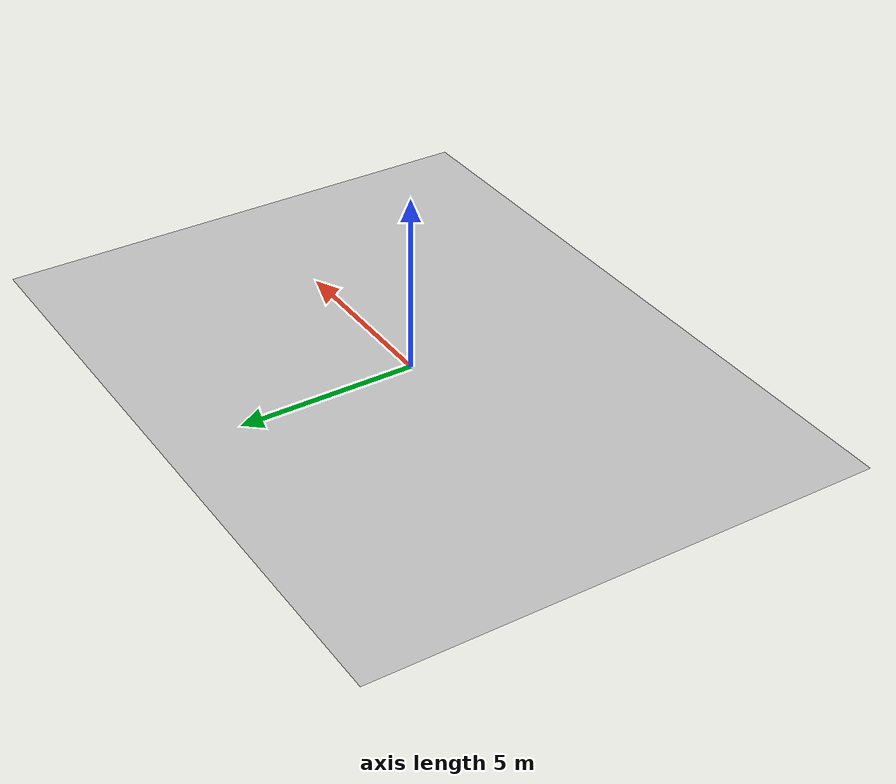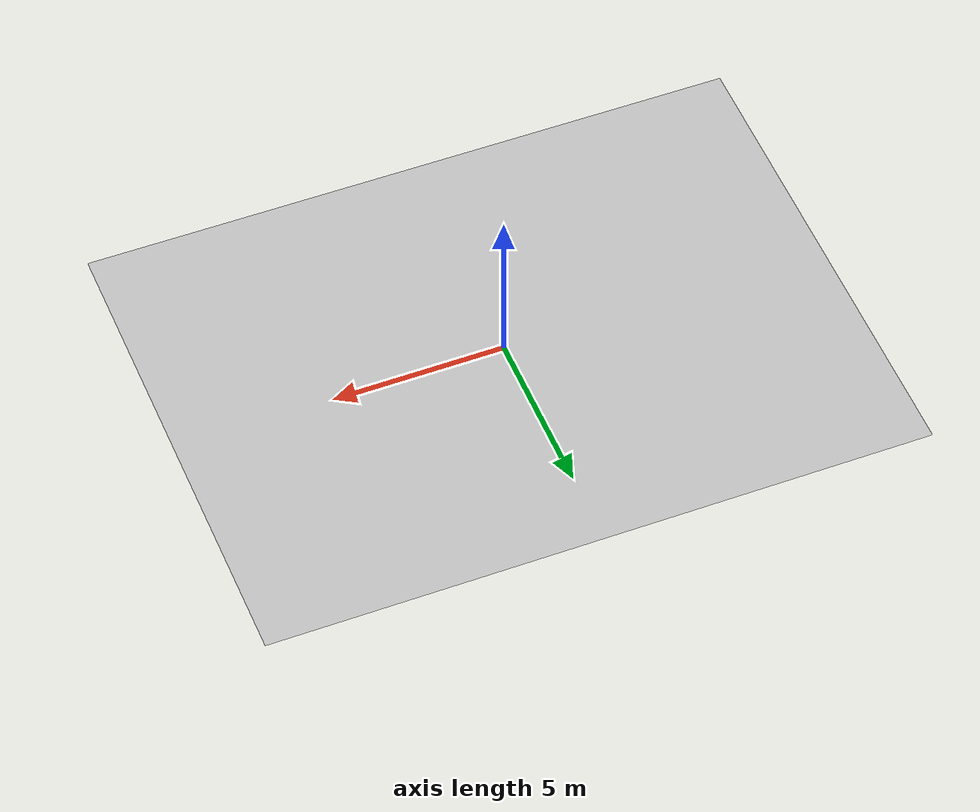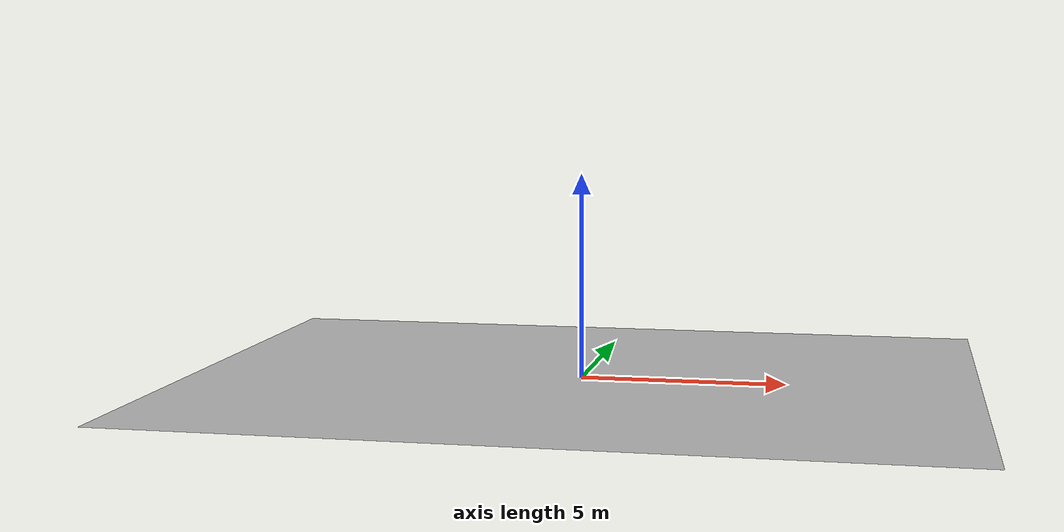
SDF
<?xml version="1.0"?>
 <sdf version="1.4">
 <model name="my_ground_plane">
    <static>true</static>
      <link name="link">
        <visual name="visual">
          <pose>0 0 0 1.5708 0 0</pose>
          <geometry>
            <mesh>
              <uri>model://my_arena/meshes/arena.obj</uri>
            </mesh>
          </geometry>
          <material>
            <script>
              <uri>model://my_arena/materials/scripts/arena.material</uri>
              <name>MyArena/Material</name>
            </script>
          </material>
        </visual>

        <collision name="collision">
          <pose>0 0 0 1.5708 0 0</pose>
          <geometry>
            <mesh>
              <uri>model://my_arena/meshes/arena.obj</uri>
            </mesh>
          </geometry>
        </collision>
     </link>
   </model>
 </sdf>
